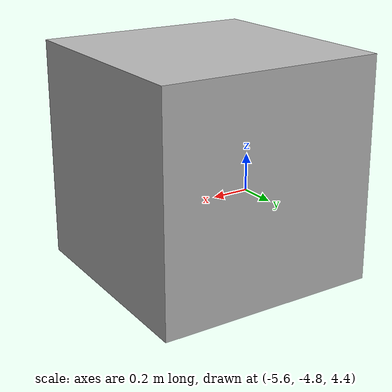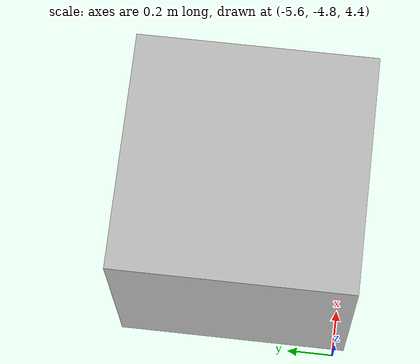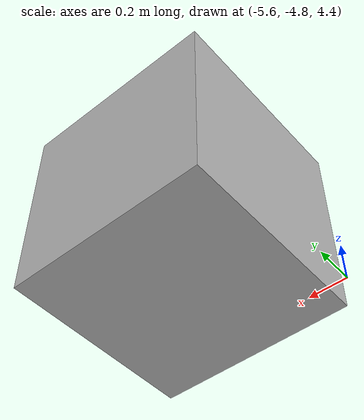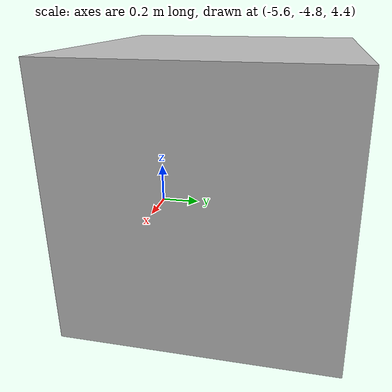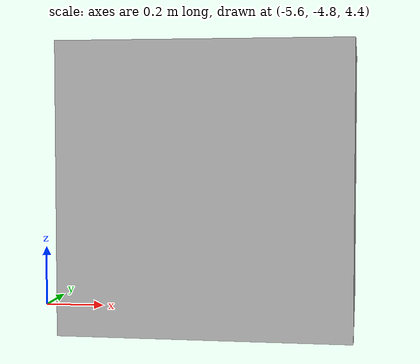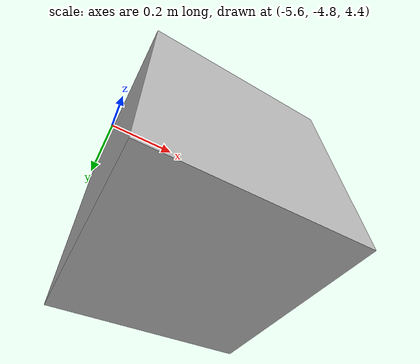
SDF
<?xml version='1.0'?>
<sdf version='1.7'>
  <model name='sky1'>
    <link name='link'>
      <self_collide>0</self_collide>
      <enable_wind>0</enable_wind>
      <kinematic>0</kinematic>
      <pose>-5.05 -4.35 4.8 0 -0 0</pose>
      <visual name='visual'>
        <geometry>
          <box>
            <size>1 1 1</size>
          </box>
        </geometry>
        <material>
          <lighting>1</lighting>
          <script>
            <uri>model://sky/materials/scripts</uri>
            <uri>model://sky/materials/textures</uri>
            <name>sky</name>
          </script>
        </material>
        <pose>0 0 0 0 -0 0</pose>
        <transparency>0</transparency>
        <cast_shadows>1</cast_shadows>
      </visual>
    </link>
    <static>0</static>
    <allow_auto_disable>1</allow_auto_disable>
  </model>
</sdf>
